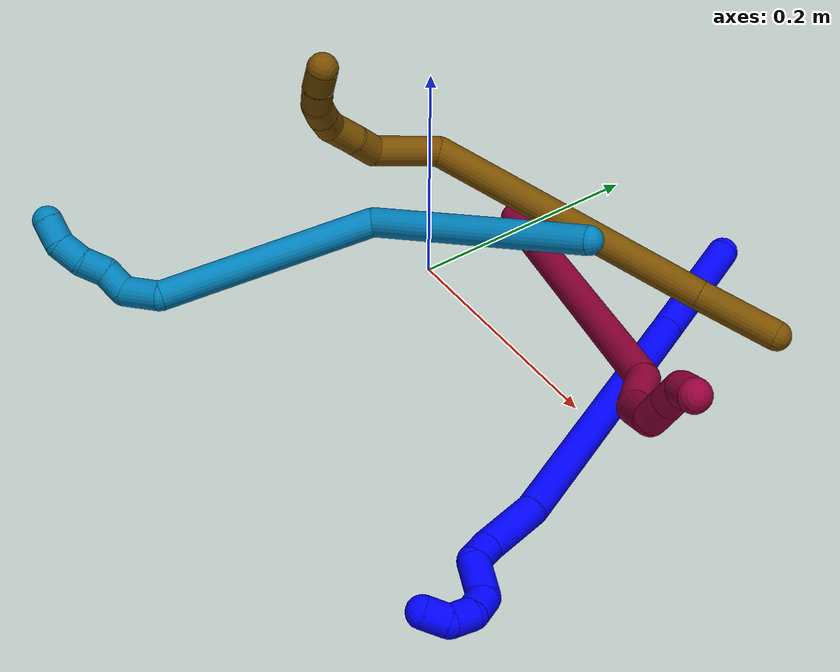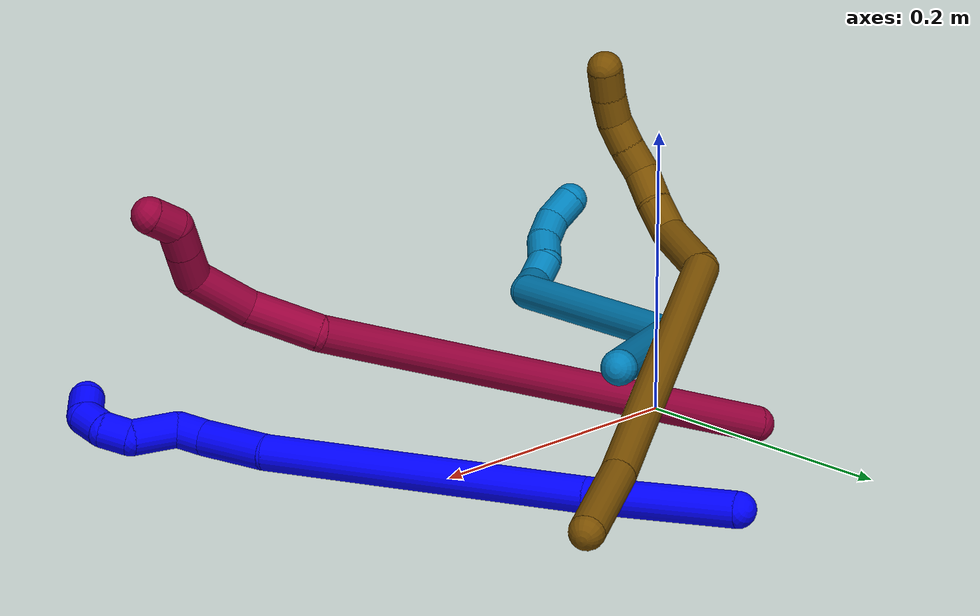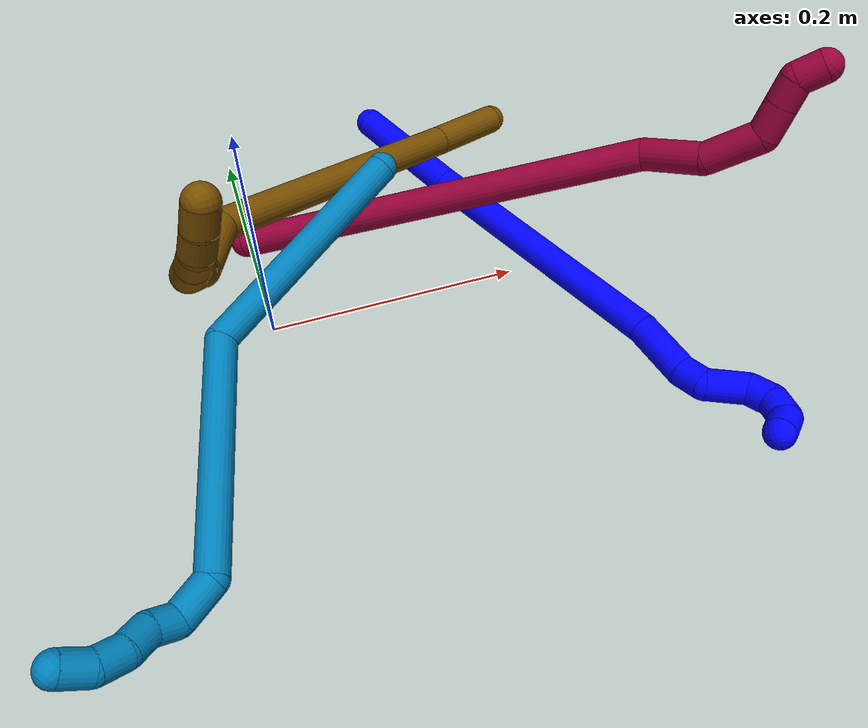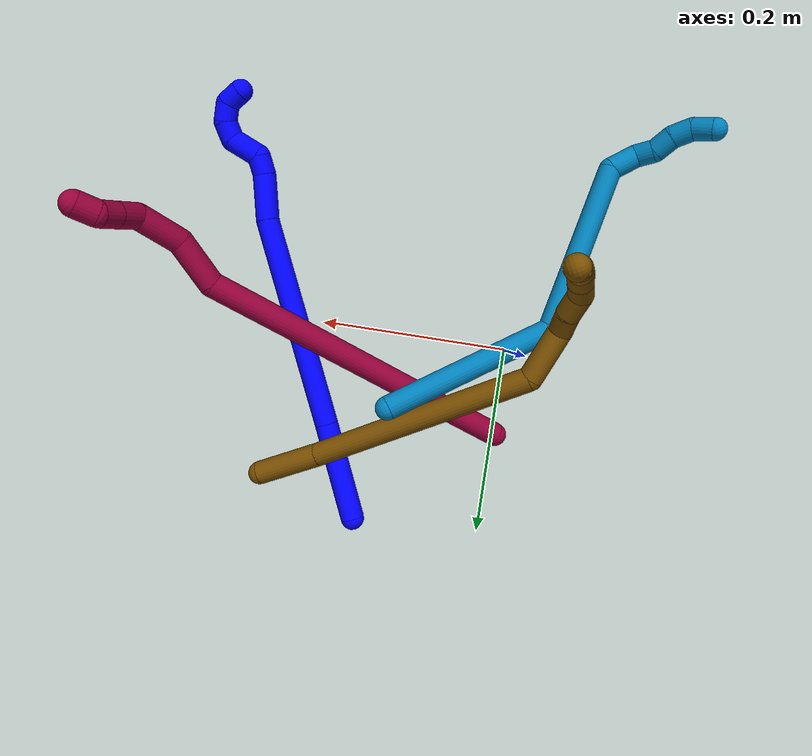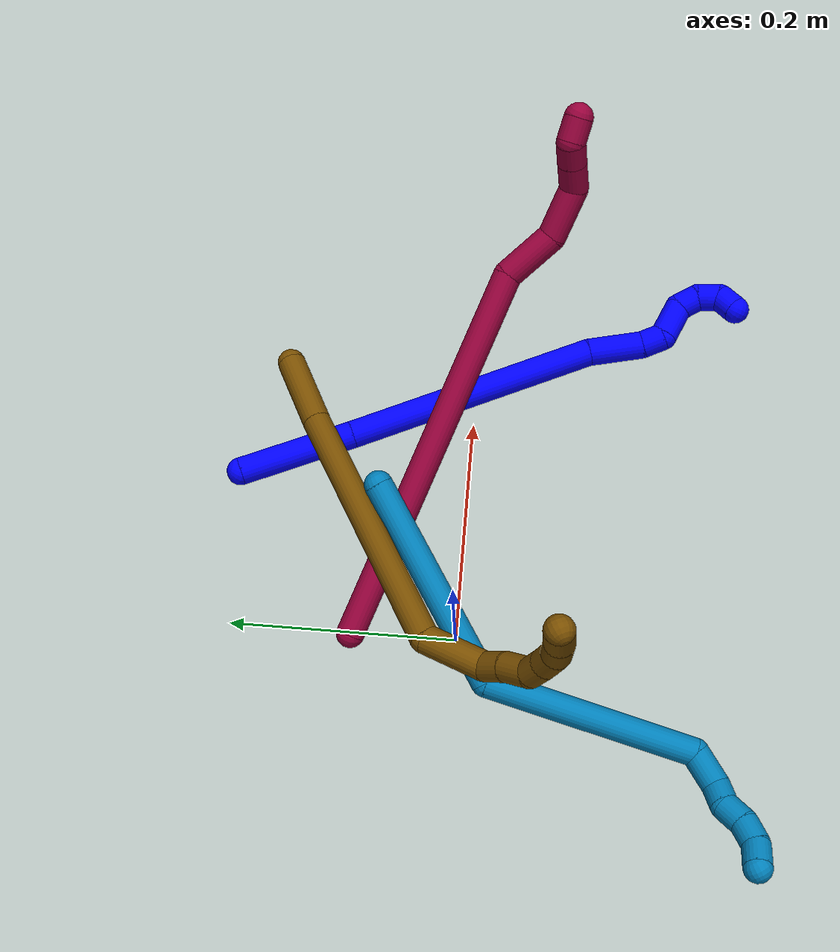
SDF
<sdf version="1.7">
 <world name="default">
  <model name="1">
   <static>0</static>
   <link name="1">
    <collision name="collision-cylinder-e_1_1_4">
     <pose>0.00842 -0.032595 0.040472 0.678008 0.160638 0.05675</pose>
     <geometry><cylinder><radius>0.0125</radius><length>0.105286</length></cylinder></geometry>
     <surface>
      <friction><ode><mu>1.16</mu><mu2>1.16</mu2><slip1>0</slip1><slip2>0</slip2></ode></friction>
      <contact><ode><kp>1e+06</kp><kd>1</kd><max_vel>0</max_vel><min_depth>0.001</min_depth></ode></contact>
     </surface>
    </collision>
    <visual name="visual-cylinder-e_1_1_4">
     <pose>0.00842 -0.032595 0.040472 0.678008 0.160638 0.05675</pose>
     <geometry><cylinder><radius>0.0125</radius><length>0.105286</length></cylinder></geometry>
     <material><ambient>0 0 1 1</ambient></material>
    </visual>
    <collision name="collision-cylinder-e_2_4_5">
     <pose>0.038405 -0.138295 0.167012 0.704136 0.188689 0.069498</pose>
     <geometry><cylinder><radius>0.0125</radius><length>0.229933</length></cylinder></geometry>
     <surface>
      <friction><ode><mu>1.16</mu><mu2>1.16</mu2><slip1>0</slip1><slip2>0</slip2></ode></friction>
      <contact><ode><kp>1e+06</kp><kd>1</kd><max_vel>0</max_vel><min_depth>0.001</min_depth></ode></contact>
     </surface>
    </collision>
    <visual name="visual-cylinder-e_2_4_5">
     <pose>0.038405 -0.138295 0.167012 0.704136 0.188689 0.069498</pose>
     <geometry><cylinder><radius>0.0125</radius><length>0.229933</length></cylinder></geometry>
     <material><ambient>0 0 1 1</ambient></material>
    </visual>
    <collision name="collision-cylinder-e_3_5_6">
     <pose>0.067471 -0.223268 0.273699 0.522296 0.305482 0.082235</pose>
     <geometry><cylinder><radius>0.0125</radius><length>0.049887</length></cylinder></geometry>
     <surface>
      <friction><ode><mu>1.16</mu><mu2>1.16</mu2><slip1>0</slip1><slip2>0</slip2></ode></friction>
      <contact><ode><kp>1e+06</kp><kd>1</kd><max_vel>0</max_vel><min_depth>0.001</min_depth></ode></contact>
     </surface>
    </collision>
    <visual name="visual-cylinder-e_3_5_6">
     <pose>0.067471 -0.223268 0.273699 0.522296 0.305482 0.082235</pose>
     <geometry><cylinder><radius>0.0125</radius><length>0.049887</length></cylinder></geometry>
     <material><ambient>0 0 1 1</ambient></material>
    </visual>
    <collision name="collision-cylinder-e_4_6_7">
     <pose>0.078415 -0.242066 0.301264 0.784094 0.337351 0.140584</pose>
     <geometry><cylinder><radius>0.0125</radius><length>0.0208</length></cylinder></geometry>
     <surface>
      <friction><ode><mu>1.16</mu><mu2>1.16</mu2><slip1>0</slip1><slip2>0</slip2></ode></friction>
      <contact><ode><kp>1e+06</kp><kd>1</kd><max_vel>0</max_vel><min_depth>0.001</min_depth></ode></contact>
     </surface>
    </collision>
    <visual name="visual-cylinder-e_4_6_7">
     <pose>0.078415 -0.242066 0.301264 0.784094 0.337351 0.140584</pose>
     <geometry><cylinder><radius>0.0125</radius><length>0.0208</length></cylinder></geometry>
     <material><ambient>0 0 1 1</ambient></material>
    </visual>
    <collision name="collision-cylinder-e_5_7_8">
     <pose>0.077604 -0.264694 0.31262 1.29707 -0.255186 -0.193851</pose>
     <geometry><cylinder><radius>0.0125</radius><length>0.0337</length></cylinder></geometry>
     <surface>
      <friction><ode><mu>1.16</mu><mu2>1.16</mu2><slip1>0</slip1><slip2>0</slip2></ode></friction>
      <contact><ode><kp>1e+06</kp><kd>1</kd><max_vel>0</max_vel><min_depth>0.001</min_depth></ode></contact>
     </surface>
    </collision>
    <visual name="visual-cylinder-e_5_7_8">
     <pose>0.077604 -0.264694 0.31262 1.29707 -0.255186 -0.193851</pose>
     <geometry><cylinder><radius>0.0125</radius><length>0.0337</length></cylinder></geometry>
     <material><ambient>0 0 1 1</ambient></material>
    </visual>
    <collision name="collision-cylinder-e_6_8_9">
     <pose>0.076498 -0.287865 0.323156 0.884018 0.314789 0.149931</pose>
     <geometry><cylinder><radius>0.0125</radius><length>0.02033</length></cylinder></geometry>
     <surface>
      <friction><ode><mu>1.16</mu><mu2>1.16</mu2><slip1>0</slip1><slip2>0</slip2></ode></friction>
      <contact><ode><kp>1e+06</kp><kd>1</kd><max_vel>0</max_vel><min_depth>0.001</min_depth></ode></contact>
     </surface>
    </collision>
    <visual name="visual-cylinder-e_6_8_9">
     <pose>0.076498 -0.287865 0.323156 0.884018 0.314789 0.149931</pose>
     <geometry><cylinder><radius>0.0125</radius><length>0.02033</length></cylinder></geometry>
     <material><ambient>0 0 1 1</ambient></material>
    </visual>
    <collision name="collision-cylinder-e_7_9_10">
     <pose>0.085223 -0.29841 0.337032 0.377341 0.589817 0.115873</pose>
     <geometry><cylinder><radius>0.0125</radius><length>0.020057</length></cylinder></geometry>
     <surface>
      <friction><ode><mu>1.16</mu><mu2>1.16</mu2><slip1>0</slip1><slip2>0</slip2></ode></friction>
      <contact><ode><kp>1e+06</kp><kd>1</kd><max_vel>0</max_vel><min_depth>0.001</min_depth></ode></contact>
     </surface>
    </collision>
    <visual name="visual-cylinder-e_7_9_10">
     <pose>0.085223 -0.29841 0.337032 0.377341 0.589817 0.115873</pose>
     <geometry><cylinder><radius>0.0125</radius><length>0.020057</length></cylinder></geometry>
     <material><ambient>0 0 1 1</ambient></material>
    </visual>
    <collision name="collision-cylinder-e_8_10_2">
     <pose>0.098576 -0.298027 0.350043 -0.580836 0.890154 -0.283211</pose>
     <geometry><cylinder><radius>0.0125</radius><length>0.020007</length></cylinder></geometry>
     <surface>
      <friction><ode><mu>1.16</mu><mu2>1.16</mu2><slip1>0</slip1><slip2>0</slip2></ode></friction>
      <contact><ode><kp>1e+06</kp><kd>1</kd><max_vel>0</max_vel><min_depth>0.001</min_depth></ode></contact>
     </surface>
    </collision>
    <visual name="visual-cylinder-e_8_10_2">
     <pose>0.098576 -0.298027 0.350043 -0.580836 0.890154 -0.283211</pose>
     <geometry><cylinder><radius>0.0125</radius><length>0.020007</length></cylinder></geometry>
     <material><ambient>0 0 1 1</ambient></material>
    </visual>
    <collision name="collision-sphere-2">
     <pose>0.10635 -0.294572 0.355305 0 -0 0</pose>
     <geometry><sphere><radius>0.0125</radius></sphere></geometry>
     <surface>
      <friction><ode><mu>1.16</mu><mu2>1.16</mu2><slip1>0</slip1><slip2>0</slip2></ode></friction>
      <contact><ode><kp>1e+06</kp><kd>1</kd><max_vel>0</max_vel><min_depth>0.001</min_depth></ode></contact>
     </surface>
    </collision>
    <visual name="visual-sphere-2">
     <pose>0.10635 -0.294572 0.355305 0 -0 0</pose>
     <geometry><sphere><radius>0.0125</radius></sphere></geometry>
     <material><ambient>0 0 1 1</ambient></material>
    </visual>
    <collision name="collision-sphere-10">
     <pose>0.090801 -0.301481 0.34478 0 -0 0</pose>
     <geometry><sphere><radius>0.0125</radius></sphere></geometry>
     <surface>
      <friction><ode><mu>1.16</mu><mu2>1.16</mu2><slip1>0</slip1><slip2>0</slip2></ode></friction>
      <contact><ode><kp>1e+06</kp><kd>1</kd><max_vel>0</max_vel><min_depth>0.001</min_depth></ode></contact>
     </surface>
    </collision>
    <visual name="visual-sphere-10">
     <pose>0.090801 -0.301481 0.34478 0 -0 0</pose>
     <geometry><sphere><radius>0.0125</radius></sphere></geometry>
     <material><ambient>0 0 1 1</ambient></material>
    </visual>
    <collision name="collision-sphere-9">
     <pose>0.079645 -0.29534 0.329285 0 -0 0</pose>
     <geometry><sphere><radius>0.0125</radius></sphere></geometry>
     <surface>
      <friction><ode><mu>1.16</mu><mu2>1.16</mu2><slip1>0</slip1><slip2>0</slip2></ode></friction>
      <contact><ode><kp>1e+06</kp><kd>1</kd><max_vel>0</max_vel><min_depth>0.001</min_depth></ode></contact>
     </surface>
    </collision>
    <visual name="visual-sphere-9">
     <pose>0.079645 -0.29534 0.329285 0 -0 0</pose>
     <geometry><sphere><radius>0.0125</radius></sphere></geometry>
     <material><ambient>0 0 1 1</ambient></material>
    </visual>
    <collision name="collision-sphere-4">
     <pose>0.01684 -0.06519 0.080943 0 -0 0</pose>
     <geometry><sphere><radius>0.0125</radius></sphere></geometry>
     <surface>
      <friction><ode><mu>1.16</mu><mu2>1.16</mu2><slip1>0</slip1><slip2>0</slip2></ode></friction>
      <contact><ode><kp>1e+06</kp><kd>1</kd><max_vel>0</max_vel><min_depth>0.001</min_depth></ode></contact>
     </surface>
    </collision>
    <visual name="visual-sphere-4">
     <pose>0.01684 -0.06519 0.080943 0 -0 0</pose>
     <geometry><sphere><radius>0.0125</radius></sphere></geometry>
     <material><ambient>0 0 1 1</ambient></material>
    </visual>
    <collision name="collision-sphere-1">
     <geometry><sphere><radius>0.0125</radius></sphere></geometry>
     <surface>
      <friction><ode><mu>1.16</mu><mu2>1.16</mu2><slip1>0</slip1><slip2>0</slip2></ode></friction>
      <contact><ode><kp>1e+06</kp><kd>1</kd><max_vel>0</max_vel><min_depth>0.001</min_depth></ode></contact>
     </surface>
    </collision>
    <visual name="visual-sphere-1">
     <geometry><sphere><radius>0.0125</radius></sphere></geometry>
     <material><ambient>0 0 1 1</ambient></material>
    </visual>
    <collision name="collision-sphere-8">
     <pose>0.073351 -0.280391 0.317028 0 -0 0</pose>
     <geometry><sphere><radius>0.0125</radius></sphere></geometry>
     <surface>
      <friction><ode><mu>1.16</mu><mu2>1.16</mu2><slip1>0</slip1><slip2>0</slip2></ode></friction>
      <contact><ode><kp>1e+06</kp><kd>1</kd><max_vel>0</max_vel><min_depth>0.001</min_depth></ode></contact>
     </surface>
    </collision>
    <visual name="visual-sphere-8">
     <pose>0.073351 -0.280391 0.317028 0 -0 0</pose>
     <geometry><sphere><radius>0.0125</radius></sphere></geometry>
     <material><ambient>0 0 1 1</ambient></material>
    </visual>
    <collision name="collision-sphere-5">
     <pose>0.059969 -0.211401 0.253081 0 -0 0</pose>
     <geometry><sphere><radius>0.0125</radius></sphere></geometry>
     <surface>
      <friction><ode><mu>1.16</mu><mu2>1.16</mu2><slip1>0</slip1><slip2>0</slip2></ode></friction>
      <contact><ode><kp>1e+06</kp><kd>1</kd><max_vel>0</max_vel><min_depth>0.001</min_depth></ode></contact>
     </surface>
    </collision>
    <visual name="visual-sphere-5">
     <pose>0.059969 -0.211401 0.253081 0 -0 0</pose>
     <geometry><sphere><radius>0.0125</radius></sphere></geometry>
     <material><ambient>0 0 1 1</ambient></material>
    </visual>
    <collision name="collision-sphere-6">
     <pose>0.074973 -0.235136 0.294316 0 -0 0</pose>
     <geometry><sphere><radius>0.0125</radius></sphere></geometry>
     <surface>
      <friction><ode><mu>1.16</mu><mu2>1.16</mu2><slip1>0</slip1><slip2>0</slip2></ode></friction>
      <contact><ode><kp>1e+06</kp><kd>1</kd><max_vel>0</max_vel><min_depth>0.001</min_depth></ode></contact>
     </surface>
    </collision>
    <visual name="visual-sphere-6">
     <pose>0.074973 -0.235136 0.294316 0 -0 0</pose>
     <geometry><sphere><radius>0.0125</radius></sphere></geometry>
     <material><ambient>0 0 1 1</ambient></material>
    </visual>
    <collision name="collision-sphere-7">
     <pose>0.081858 -0.248997 0.308213 0 -0 0</pose>
     <geometry><sphere><radius>0.0125</radius></sphere></geometry>
     <surface>
      <friction><ode><mu>1.16</mu><mu2>1.16</mu2><slip1>0</slip1><slip2>0</slip2></ode></friction>
      <contact><ode><kp>1e+06</kp><kd>1</kd><max_vel>0</max_vel><min_depth>0.001</min_depth></ode></contact>
     </surface>
    </collision>
    <visual name="visual-sphere-7">
     <pose>0.081858 -0.248997 0.308213 0 -0 0</pose>
     <geometry><sphere><radius>0.0125</radius></sphere></geometry>
     <material><ambient>0 0 1 1</ambient></material>
    </visual>
    <inertial>
     <pose>0.045132 -0.156248 0.186903 0 -0 0</pose>
     <mass>0.5</mass>
     <inertia>
      <ixx>0.001206</ixx>
      <ixy>0</ixy>
      <ixz>0</ixz>
      <iyy>0.000935</iyy>
      <iyz>0</iyz>
      <izz>0.000539</izz>
     </inertia>
    </inertial>
   </link>
   <pose>0.135492 0.204401 0.015534 -2.56899 -0.98763 -2.35992</pose>
  </model>
  <model name="8">
   <static>0</static>
   <link name="8">
    <collision name="collision-cylinder-e_1_1_4">
     <pose>0.074338 -0.017445 0.151364 0.114743 0.453915 0.026526</pose>
     <geometry><cylinder><radius>0.0125</radius><length>0.339066</length></cylinder></geometry>
     <surface>
      <friction><ode><mu>1.16</mu><mu2>1.16</mu2><slip1>0</slip1><slip2>0</slip2></ode></friction>
      <contact><ode><kp>1e+06</kp><kd>1</kd><max_vel>0</max_vel><min_depth>0.001</min_depth></ode></contact>
     </surface>
    </collision>
    <visual name="visual-cylinder-e_1_1_4">
     <pose>0.074338 -0.017445 0.151364 0.114743 0.453915 0.026526</pose>
     <geometry><cylinder><radius>0.0125</radius><length>0.339066</length></cylinder></geometry>
     <material><ambient>0.584314 0 0.227451 1</ambient></material>
    </visual>
    <collision name="collision-cylinder-e_2_4_5">
     <pose>0.154272 -0.047307 0.323325 0.542533 0.228588 0.063832</pose>
     <geometry><cylinder><radius>0.0125</radius><length>0.049388</length></cylinder></geometry>
     <surface>
      <friction><ode><mu>1.16</mu><mu2>1.16</mu2><slip1>0</slip1><slip2>0</slip2></ode></friction>
      <contact><ode><kp>1e+06</kp><kd>1</kd><max_vel>0</max_vel><min_depth>0.001</min_depth></ode></contact>
     </surface>
    </collision>
    <visual name="visual-cylinder-e_2_4_5">
     <pose>0.154272 -0.047307 0.323325 0.542533 0.228588 0.063832</pose>
     <geometry><cylinder><radius>0.0125</radius><length>0.049388</length></cylinder></geometry>
     <material><ambient>0.584314 0 0.227451 1</ambient></material>
    </visual>
    <collision name="collision-cylinder-e_3_5_6">
     <pose>0.16407 -0.06146 0.366074 0.078151 0.186928 0.007329</pose>
     <geometry><cylinder><radius>0.0125</radius><length>0.045225</length></cylinder></geometry>
     <surface>
      <friction><ode><mu>1.16</mu><mu2>1.16</mu2><slip1>0</slip1><slip2>0</slip2></ode></friction>
      <contact><ode><kp>1e+06</kp><kd>1</kd><max_vel>0</max_vel><min_depth>0.001</min_depth></ode></contact>
     </surface>
    </collision>
    <visual name="visual-cylinder-e_3_5_6">
     <pose>0.16407 -0.06146 0.366074 0.078151 0.186928 0.007329</pose>
     <geometry><cylinder><radius>0.0125</radius><length>0.045225</length></cylinder></geometry>
     <material><ambient>0.584314 0 0.227451 1</ambient></material>
    </visual>
    <collision name="collision-cylinder-e_4_6_7">
     <pose>0.165016 -0.0579 0.399357 -0.443932 -0.258225 0.058587</pose>
     <geometry><cylinder><radius>0.0125</radius><length>0.0255</length></cylinder></geometry>
     <surface>
      <friction><ode><mu>1.16</mu><mu2>1.16</mu2><slip1>0</slip1><slip2>0</slip2></ode></friction>
      <contact><ode><kp>1e+06</kp><kd>1</kd><max_vel>0</max_vel><min_depth>0.001</min_depth></ode></contact>
     </surface>
    </collision>
    <visual name="visual-cylinder-e_4_6_7">
     <pose>0.165016 -0.0579 0.399357 -0.443932 -0.258225 0.058587</pose>
     <geometry><cylinder><radius>0.0125</radius><length>0.0255</length></cylinder></geometry>
     <material><ambient>0.584314 0 0.227451 1</ambient></material>
    </visual>
    <collision name="collision-cylinder-e_5_7_8">
     <pose>0.159074 -0.048516 0.419268 -0.435971 -0.270554 0.060279</pose>
     <geometry><cylinder><radius>0.0125</radius><length>0.020101</length></cylinder></geometry>
     <surface>
      <friction><ode><mu>1.16</mu><mu2>1.16</mu2><slip1>0</slip1><slip2>0</slip2></ode></friction>
      <contact><ode><kp>1e+06</kp><kd>1</kd><max_vel>0</max_vel><min_depth>0.001</min_depth></ode></contact>
     </surface>
    </collision>
    <visual name="visual-cylinder-e_5_7_8">
     <pose>0.159074 -0.048516 0.419268 -0.435971 -0.270554 0.060279</pose>
     <geometry><cylinder><radius>0.0125</radius><length>0.020101</length></cylinder></geometry>
     <material><ambient>0.584314 0 0.227451 1</ambient></material>
    </visual>
    <collision name="collision-cylinder-e_6_8_2">
     <pose>0.159431 -0.044067 0.437944 -0.036267 0.298117 -0.005447</pose>
     <geometry><cylinder><radius>0.0125</radius><length>0.020721</length></cylinder></geometry>
     <surface>
      <friction><ode><mu>1.16</mu><mu2>1.16</mu2><slip1>0</slip1><slip2>0</slip2></ode></friction>
      <contact><ode><kp>1e+06</kp><kd>1</kd><max_vel>0</max_vel><min_depth>0.001</min_depth></ode></contact>
     </surface>
    </collision>
    <visual name="visual-cylinder-e_6_8_2">
     <pose>0.159431 -0.044067 0.437944 -0.036267 0.298117 -0.005447</pose>
     <geometry><cylinder><radius>0.0125</radius><length>0.020721</length></cylinder></geometry>
     <material><ambient>0.584314 0 0.227451 1</ambient></material>
    </visual>
    <collision name="collision-sphere-2">
     <pose>0.162474 -0.043708 0.447841 0 -0 0</pose>
     <geometry><sphere><radius>0.0125</radius></sphere></geometry>
     <surface>
      <friction><ode><mu>1.16</mu><mu2>1.16</mu2><slip1>0</slip1><slip2>0</slip2></ode></friction>
      <contact><ode><kp>1e+06</kp><kd>1</kd><max_vel>0</max_vel><min_depth>0.001</min_depth></ode></contact>
     </surface>
    </collision>
    <visual name="visual-sphere-2">
     <pose>0.162474 -0.043708 0.447841 0 -0 0</pose>
     <geometry><sphere><radius>0.0125</radius></sphere></geometry>
     <material><ambient>0.584314 0 0.227451 1</ambient></material>
    </visual>
    <collision name="collision-sphere-4">
     <pose>0.148676 -0.034889 0.302727 0 -0 0</pose>
     <geometry><sphere><radius>0.0125</radius></sphere></geometry>
     <surface>
      <friction><ode><mu>1.16</mu><mu2>1.16</mu2><slip1>0</slip1><slip2>0</slip2></ode></friction>
      <contact><ode><kp>1e+06</kp><kd>1</kd><max_vel>0</max_vel><min_depth>0.001</min_depth></ode></contact>
     </surface>
    </collision>
    <visual name="visual-sphere-4">
     <pose>0.148676 -0.034889 0.302727 0 -0 0</pose>
     <geometry><sphere><radius>0.0125</radius></sphere></geometry>
     <material><ambient>0.584314 0 0.227451 1</ambient></material>
    </visual>
    <collision name="collision-sphere-1">
     <geometry><sphere><radius>0.0125</radius></sphere></geometry>
     <surface>
      <friction><ode><mu>1.16</mu><mu2>1.16</mu2><slip1>0</slip1><slip2>0</slip2></ode></friction>
      <contact><ode><kp>1e+06</kp><kd>1</kd><max_vel>0</max_vel><min_depth>0.001</min_depth></ode></contact>
     </surface>
    </collision>
    <visual name="visual-sphere-1">
     <geometry><sphere><radius>0.0125</radius></sphere></geometry>
     <material><ambient>0.584314 0 0.227451 1</ambient></material>
    </visual>
    <collision name="collision-sphere-8">
     <pose>0.156388 -0.044426 0.428047 0 -0 0</pose>
     <geometry><sphere><radius>0.0125</radius></sphere></geometry>
     <surface>
      <friction><ode><mu>1.16</mu><mu2>1.16</mu2><slip1>0</slip1><slip2>0</slip2></ode></friction>
      <contact><ode><kp>1e+06</kp><kd>1</kd><max_vel>0</max_vel><min_depth>0.001</min_depth></ode></contact>
     </surface>
    </collision>
    <visual name="visual-sphere-8">
     <pose>0.156388 -0.044426 0.428047 0 -0 0</pose>
     <geometry><sphere><radius>0.0125</radius></sphere></geometry>
     <material><ambient>0.584314 0 0.227451 1</ambient></material>
    </visual>
    <collision name="collision-sphere-5">
     <pose>0.159867 -0.059725 0.343923 0 -0 0</pose>
     <geometry><sphere><radius>0.0125</radius></sphere></geometry>
     <surface>
      <friction><ode><mu>1.16</mu><mu2>1.16</mu2><slip1>0</slip1><slip2>0</slip2></ode></friction>
      <contact><ode><kp>1e+06</kp><kd>1</kd><max_vel>0</max_vel><min_depth>0.001</min_depth></ode></contact>
     </surface>
    </collision>
    <visual name="visual-sphere-5">
     <pose>0.159867 -0.059725 0.343923 0 -0 0</pose>
     <geometry><sphere><radius>0.0125</radius></sphere></geometry>
     <material><ambient>0.584314 0 0.227451 1</ambient></material>
    </visual>
    <collision name="collision-sphere-6">
     <pose>0.168272 -0.063194 0.388225 0 -0 0</pose>
     <geometry><sphere><radius>0.0125</radius></sphere></geometry>
     <surface>
      <friction><ode><mu>1.16</mu><mu2>1.16</mu2><slip1>0</slip1><slip2>0</slip2></ode></friction>
      <contact><ode><kp>1e+06</kp><kd>1</kd><max_vel>0</max_vel><min_depth>0.001</min_depth></ode></contact>
     </surface>
    </collision>
    <visual name="visual-sphere-6">
     <pose>0.168272 -0.063194 0.388225 0 -0 0</pose>
     <geometry><sphere><radius>0.0125</radius></sphere></geometry>
     <material><ambient>0.584314 0 0.227451 1</ambient></material>
    </visual>
    <collision name="collision-sphere-7">
     <pose>0.16176 -0.052606 0.410489 0 -0 0</pose>
     <geometry><sphere><radius>0.0125</radius></sphere></geometry>
     <surface>
      <friction><ode><mu>1.16</mu><mu2>1.16</mu2><slip1>0</slip1><slip2>0</slip2></ode></friction>
      <contact><ode><kp>1e+06</kp><kd>1</kd><max_vel>0</max_vel><min_depth>0.001</min_depth></ode></contact>
     </surface>
    </collision>
    <visual name="visual-sphere-7">
     <pose>0.16176 -0.052606 0.410489 0 -0 0</pose>
     <geometry><sphere><radius>0.0125</radius></sphere></geometry>
     <material><ambient>0.584314 0 0.227451 1</ambient></material>
    </visual>
    <inertial>
     <pose>0.101907 -0.028791 0.223064 0 -0 0</pose>
     <mass>0.5</mass>
     <inertia>
      <ixx>0.003048</ixx>
      <ixy>0</ixy>
      <ixz>0</ixz>
      <iyy>0.003344</iyy>
      <iyz>0</iyz>
      <izz>-0.001058</izz>
     </inertia>
    </inertial>
   </link>
   <pose>-0.003083 0.091939 0.01149 0.318059 0.722325 0.048547</pose>
  </model>
  <model name="9">
   <static>0</static>
   <link name="9">
    <collision name="collision-cylinder-e_1_1_4">
     <pose>-5.7e-05 -0.005621 0.095264 0.058941 -0.000593 -1.7e-05</pose>
     <geometry><cylinder><radius>0.0125</radius><length>0.19086</length></cylinder></geometry>
     <surface>
      <friction><ode><mu>1.16</mu><mu2>1.16</mu2><slip1>0</slip1><slip2>0</slip2></ode></friction>
      <contact><ode><kp>1e+06</kp><kd>1</kd><max_vel>0</max_vel><min_depth>0.001</min_depth></ode></contact>
     </surface>
    </collision>
    <visual name="visual-cylinder-e_1_1_4">
     <pose>-5.7e-05 -0.005621 0.095264 0.058941 -0.000593 -1.7e-05</pose>
     <geometry><cylinder><radius>0.0125</radius><length>0.19086</length></cylinder></geometry>
     <material><ambient>0 0.490196 0.709804 1</ambient></material>
    </visual>
    <collision name="collision-cylinder-e_2_4_5">
     <pose>-0.061748 -0.033069 0.257906 0.313269 -0.716132 -0.118055</pose>
     <geometry><cylinder><radius>0.0125</radius><length>0.187776</length></cylinder></geometry>
     <surface>
      <friction><ode><mu>1.16</mu><mu2>1.16</mu2><slip1>0</slip1><slip2>0</slip2></ode></friction>
      <contact><ode><kp>1e+06</kp><kd>1</kd><max_vel>0</max_vel><min_depth>0.001</min_depth></ode></contact>
     </surface>
    </collision>
    <visual name="visual-cylinder-e_2_4_5">
     <pose>-0.061748 -0.033069 0.257906 0.313269 -0.716132 -0.118055</pose>
     <geometry><cylinder><radius>0.0125</radius><length>0.187776</length></cylinder></geometry>
     <material><ambient>0 0.490196 0.709804 1</ambient></material>
    </visual>
    <collision name="collision-cylinder-e_3_5_6">
     <pose>-0.123884 -0.057405 0.341334 0.155139 -0.030867 -0.002399</pose>
     <geometry><cylinder><radius>0.0125</radius><length>0.032505</length></cylinder></geometry>
     <surface>
      <friction><ode><mu>1.16</mu><mu2>1.16</mu2><slip1>0</slip1><slip2>0</slip2></ode></friction>
      <contact><ode><kp>1e+06</kp><kd>1</kd><max_vel>0</max_vel><min_depth>0.001</min_depth></ode></contact>
     </surface>
    </collision>
    <visual name="visual-cylinder-e_3_5_6">
     <pose>-0.123884 -0.057405 0.341334 0.155139 -0.030867 -0.002399</pose>
     <geometry><cylinder><radius>0.0125</radius><length>0.032505</length></cylinder></geometry>
     <material><ambient>0 0.490196 0.709804 1</ambient></material>
    </visual>
    <collision name="collision-cylinder-e_4_6_7">
     <pose>-0.120499 -0.066988 0.364592 0.775915 0.367404 0.151568</pose>
     <geometry><cylinder><radius>0.0125</radius><length>0.021642</length></cylinder></geometry>
     <surface>
      <friction><ode><mu>1.16</mu><mu2>1.16</mu2><slip1>0</slip1><slip2>0</slip2></ode></friction>
      <contact><ode><kp>1e+06</kp><kd>1</kd><max_vel>0</max_vel><min_depth>0.001</min_depth></ode></contact>
     </surface>
    </collision>
    <visual name="visual-cylinder-e_4_6_7">
     <pose>-0.120499 -0.066988 0.364592 0.775915 0.367404 0.151568</pose>
     <geometry><cylinder><radius>0.0125</radius><length>0.021642</length></cylinder></geometry>
     <material><ambient>0 0.490196 0.709804 1</ambient></material>
    </visual>
    <collision name="collision-cylinder-e_5_7_8">
     <pose>-0.117496 -0.081501 0.379969 0.738728 -0.079841 -0.030923</pose>
     <geometry><cylinder><radius>0.0125</radius><length>0.02217</length></cylinder></geometry>
     <surface>
      <friction><ode><mu>1.16</mu><mu2>1.16</mu2><slip1>0</slip1><slip2>0</slip2></ode></friction>
      <contact><ode><kp>1e+06</kp><kd>1</kd><max_vel>0</max_vel><min_depth>0.001</min_depth></ode></contact>
     </surface>
    </collision>
    <visual name="visual-cylinder-e_5_7_8">
     <pose>-0.117496 -0.081501 0.379969 0.738728 -0.079841 -0.030923</pose>
     <geometry><cylinder><radius>0.0125</radius><length>0.02217</length></cylinder></geometry>
     <material><ambient>0 0.490196 0.709804 1</ambient></material>
    </visual>
    <collision name="collision-cylinder-e_6_8_9">
     <pose>-0.115682 -0.095899 0.396452 0.696851 0.243965 0.089003</pose>
     <geometry><cylinder><radius>0.0125</radius><length>0.022344</length></cylinder></geometry>
     <surface>
      <friction><ode><mu>1.16</mu><mu2>1.16</mu2><slip1>0</slip1><slip2>0</slip2></ode></friction>
      <contact><ode><kp>1e+06</kp><kd>1</kd><max_vel>0</max_vel><min_depth>0.001</min_depth></ode></contact>
     </surface>
    </collision>
    <visual name="visual-cylinder-e_6_8_9">
     <pose>-0.115682 -0.095899 0.396452 0.696851 0.243965 0.089003</pose>
     <geometry><cylinder><radius>0.0125</radius><length>0.022344</length></cylinder></geometry>
     <material><ambient>0 0.490196 0.709804 1</ambient></material>
    </visual>
    <collision name="collision-cylinder-e_7_9_2">
     <pose>-0.105995 -0.109358 0.410911 0.813554 0.663128 0.294483</pose>
     <geometry><cylinder><radius>0.0125</radius><length>0.022703</length></cylinder></geometry>
     <surface>
      <friction><ode><mu>1.16</mu><mu2>1.16</mu2><slip1>0</slip1><slip2>0</slip2></ode></friction>
      <contact><ode><kp>1e+06</kp><kd>1</kd><max_vel>0</max_vel><min_depth>0.001</min_depth></ode></contact>
     </surface>
    </collision>
    <visual name="visual-cylinder-e_7_9_2">
     <pose>-0.105995 -0.109358 0.410911 0.813554 0.663128 0.294483</pose>
     <geometry><cylinder><radius>0.0125</radius><length>0.022703</length></cylinder></geometry>
     <material><ambient>0 0.490196 0.709804 1</ambient></material>
    </visual>
    <collision name="collision-sphere-2">
     <pose>-0.099008 -0.115859 0.417056 0 -0 0</pose>
     <geometry><sphere><radius>0.0125</radius></sphere></geometry>
     <surface>
      <friction><ode><mu>1.16</mu><mu2>1.16</mu2><slip1>0</slip1><slip2>0</slip2></ode></friction>
      <contact><ode><kp>1e+06</kp><kd>1</kd><max_vel>0</max_vel><min_depth>0.001</min_depth></ode></contact>
     </surface>
    </collision>
    <visual name="visual-sphere-2">
     <pose>-0.099008 -0.115859 0.417056 0 -0 0</pose>
     <geometry><sphere><radius>0.0125</radius></sphere></geometry>
     <material><ambient>0 0.490196 0.709804 1</ambient></material>
    </visual>
    <collision name="collision-sphere-9">
     <pose>-0.112983 -0.102857 0.404766 0 -0 0</pose>
     <geometry><sphere><radius>0.0125</radius></sphere></geometry>
     <surface>
      <friction><ode><mu>1.16</mu><mu2>1.16</mu2><slip1>0</slip1><slip2>0</slip2></ode></friction>
      <contact><ode><kp>1e+06</kp><kd>1</kd><max_vel>0</max_vel><min_depth>0.001</min_depth></ode></contact>
     </surface>
    </collision>
    <visual name="visual-sphere-9">
     <pose>-0.112983 -0.102857 0.404766 0 -0 0</pose>
     <geometry><sphere><radius>0.0125</radius></sphere></geometry>
     <material><ambient>0 0.490196 0.709804 1</ambient></material>
    </visual>
    <collision name="collision-sphere-4">
     <pose>-0.000113 -0.011243 0.190529 0 -0 0</pose>
     <geometry><sphere><radius>0.0125</radius></sphere></geometry>
     <surface>
      <friction><ode><mu>1.16</mu><mu2>1.16</mu2><slip1>0</slip1><slip2>0</slip2></ode></friction>
      <contact><ode><kp>1e+06</kp><kd>1</kd><max_vel>0</max_vel><min_depth>0.001</min_depth></ode></contact>
     </surface>
    </collision>
    <visual name="visual-sphere-4">
     <pose>-0.000113 -0.011243 0.190529 0 -0 0</pose>
     <geometry><sphere><radius>0.0125</radius></sphere></geometry>
     <material><ambient>0 0.490196 0.709804 1</ambient></material>
    </visual>
    <collision name="collision-sphere-1">
     <geometry><sphere><radius>0.0125</radius></sphere></geometry>
     <surface>
      <friction><ode><mu>1.16</mu><mu2>1.16</mu2><slip1>0</slip1><slip2>0</slip2></ode></friction>
      <contact><ode><kp>1e+06</kp><kd>1</kd><max_vel>0</max_vel><min_depth>0.001</min_depth></ode></contact>
     </surface>
    </collision>
    <visual name="visual-sphere-1">
     <geometry><sphere><radius>0.0125</radius></sphere></geometry>
     <material><ambient>0 0.490196 0.709804 1</ambient></material>
    </visual>
    <collision name="collision-sphere-8">
     <pose>-0.11838 -0.088941 0.388138 0 -0 0</pose>
     <geometry><sphere><radius>0.0125</radius></sphere></geometry>
     <surface>
      <friction><ode><mu>1.16</mu><mu2>1.16</mu2><slip1>0</slip1><slip2>0</slip2></ode></friction>
      <contact><ode><kp>1e+06</kp><kd>1</kd><max_vel>0</max_vel><min_depth>0.001</min_depth></ode></contact>
     </surface>
    </collision>
    <visual name="visual-sphere-8">
     <pose>-0.11838 -0.088941 0.388138 0 -0 0</pose>
     <geometry><sphere><radius>0.0125</radius></sphere></geometry>
     <material><ambient>0 0.490196 0.709804 1</ambient></material>
    </visual>
    <collision name="collision-sphere-5">
     <pose>-0.123383 -0.054895 0.325284 0 -0 0</pose>
     <geometry><sphere><radius>0.0125</radius></sphere></geometry>
     <surface>
      <friction><ode><mu>1.16</mu><mu2>1.16</mu2><slip1>0</slip1><slip2>0</slip2></ode></friction>
      <contact><ode><kp>1e+06</kp><kd>1</kd><max_vel>0</max_vel><min_depth>0.001</min_depth></ode></contact>
     </surface>
    </collision>
    <visual name="visual-sphere-5">
     <pose>-0.123383 -0.054895 0.325284 0 -0 0</pose>
     <geometry><sphere><radius>0.0125</radius></sphere></geometry>
     <material><ambient>0 0.490196 0.709804 1</ambient></material>
    </visual>
    <collision name="collision-sphere-6">
     <pose>-0.124386 -0.059915 0.357383 0 -0 0</pose>
     <geometry><sphere><radius>0.0125</radius></sphere></geometry>
     <surface>
      <friction><ode><mu>1.16</mu><mu2>1.16</mu2><slip1>0</slip1><slip2>0</slip2></ode></friction>
      <contact><ode><kp>1e+06</kp><kd>1</kd><max_vel>0</max_vel><min_depth>0.001</min_depth></ode></contact>
     </surface>
    </collision>
    <visual name="visual-sphere-6">
     <pose>-0.124386 -0.059915 0.357383 0 -0 0</pose>
     <geometry><sphere><radius>0.0125</radius></sphere></geometry>
     <material><ambient>0 0.490196 0.709804 1</ambient></material>
    </visual>
    <collision name="collision-sphere-7">
     <pose>-0.116612 -0.074061 0.3718 0 -0 0</pose>
     <geometry><sphere><radius>0.0125</radius></sphere></geometry>
     <surface>
      <friction><ode><mu>1.16</mu><mu2>1.16</mu2><slip1>0</slip1><slip2>0</slip2></ode></friction>
      <contact><ode><kp>1e+06</kp><kd>1</kd><max_vel>0</max_vel><min_depth>0.001</min_depth></ode></contact>
     </surface>
    </collision>
    <visual name="visual-sphere-7">
     <pose>-0.116612 -0.074061 0.3718 0 -0 0</pose>
     <geometry><sphere><radius>0.0125</radius></sphere></geometry>
     <material><ambient>0 0.490196 0.709804 1</ambient></material>
    </visual>
    <inertial>
     <pose>-0.051673 -0.034061 0.224415 0 -0 0</pose>
     <mass>0.5</mass>
     <inertia>
      <ixx>0.00096</ixx>
      <ixy>0</ixy>
      <ixz>0</ixz>
      <iyy>0.001079</iyy>
      <iyz>0</iyz>
      <izz>0.000568</izz>
     </inertia>
    </inertial>
   </link>
   <pose>0.114473 0.074778 0.076576 -1.84011 -0.224264 2.20564</pose>
  </model>
  <model name="12">
   <static>0</static>
   <link name="12">
    <collision name="collision-cylinder-e_1_1_4">
     <pose>4.5e-05 -3.3e-05 -0.034648 3.14064 0.0013 1.87563</pose>
     <geometry><cylinder><radius>0.0125</radius><length>0.069296</length></cylinder></geometry>
     <surface>
      <friction><ode><mu>1.16</mu><mu2>1.16</mu2><slip1>0</slip1><slip2>0</slip2></ode></friction>
      <contact><ode><kp>1e+06</kp><kd>1</kd><max_vel>0</max_vel><min_depth>0.001</min_depth></ode></contact>
     </surface>
    </collision>
    <visual name="visual-cylinder-e_1_1_4">
     <pose>4.5e-05 -3.3e-05 -0.034648 3.14064 0.0013 1.87563</pose>
     <geometry><cylinder><radius>0.0125</radius><length>0.069296</length></cylinder></geometry>
     <material><ambient>0.466667 0.301961 0 1</ambient></material>
    </visual>
    <collision name="collision-cylinder-e_2_4_5">
     <pose>-0.005437 -0.008058 -0.190083 3.07553 -0.04563 -1.20871</pose>
     <geometry><cylinder><radius>0.0125</radius><length>0.242355</length></cylinder></geometry>
     <surface>
      <friction><ode><mu>1.16</mu><mu2>1.16</mu2><slip1>0</slip1><slip2>0</slip2></ode></friction>
      <contact><ode><kp>1e+06</kp><kd>1</kd><max_vel>0</max_vel><min_depth>0.001</min_depth></ode></contact>
     </surface>
    </collision>
    <visual name="visual-cylinder-e_2_4_5">
     <pose>-0.005437 -0.008058 -0.190083 3.07553 -0.04563 -1.20871</pose>
     <geometry><cylinder><radius>0.0125</radius><length>0.242355</length></cylinder></geometry>
     <material><ambient>0.466667 0.301961 0 1</ambient></material>
    </visual>
    <collision name="collision-cylinder-e_3_5_6">
     <pose>-0.004542 -0.032412 -0.332043 2.48363 0.23556 0.667297</pose>
     <geometry><cylinder><radius>0.0125</radius><length>0.055038</length></cylinder></geometry>
     <surface>
      <friction><ode><mu>1.16</mu><mu2>1.16</mu2><slip1>0</slip1><slip2>0</slip2></ode></friction>
      <contact><ode><kp>1e+06</kp><kd>1</kd><max_vel>0</max_vel><min_depth>0.001</min_depth></ode></contact>
     </surface>
    </collision>
    <visual name="visual-cylinder-e_3_5_6">
     <pose>-0.004542 -0.032412 -0.332043 2.48363 0.23556 0.667297</pose>
     <geometry><cylinder><radius>0.0125</radius><length>0.055038</length></cylinder></geometry>
     <material><ambient>0.466667 0.301961 0 1</ambient></material>
    </visual>
    <collision name="collision-cylinder-e_4_6_7">
     <pose>-0.002589 -0.058075 -0.359844 2.19002 -0.373051 -0.702164</pose>
     <geometry><cylinder><radius>0.0125</radius><length>0.024526</length></cylinder></geometry>
     <surface>
      <friction><ode><mu>1.16</mu><mu2>1.16</mu2><slip1>0</slip1><slip2>0</slip2></ode></friction>
      <contact><ode><kp>1e+06</kp><kd>1</kd><max_vel>0</max_vel><min_depth>0.001</min_depth></ode></contact>
     </surface>
    </collision>
    <visual name="visual-cylinder-e_4_6_7">
     <pose>-0.002589 -0.058075 -0.359844 2.19002 -0.373051 -0.702164</pose>
     <geometry><cylinder><radius>0.0125</radius><length>0.024526</length></cylinder></geometry>
     <material><ambient>0.466667 0.301961 0 1</ambient></material>
    </visual>
    <collision name="collision-cylinder-e_5_7_8">
     <pose>-0.010909 -0.076214 -0.375293 2.35518 -0.299045 -0.696721</pose>
     <geometry><cylinder><radius>0.0125</radius><length>0.026138</length></cylinder></geometry>
     <surface>
      <friction><ode><mu>1.16</mu><mu2>1.16</mu2><slip1>0</slip1><slip2>0</slip2></ode></friction>
      <contact><ode><kp>1e+06</kp><kd>1</kd><max_vel>0</max_vel><min_depth>0.001</min_depth></ode></contact>
     </surface>
    </collision>
    <visual name="visual-cylinder-e_5_7_8">
     <pose>-0.010909 -0.076214 -0.375293 2.35518 -0.299045 -0.696721</pose>
     <geometry><cylinder><radius>0.0125</radius><length>0.026138</length></cylinder></geometry>
     <material><ambient>0.466667 0.301961 0 1</ambient></material>
    </visual>
    <collision name="collision-cylinder-e_6_8_9">
     <pose>-0.020649 -0.093422 -0.386216 1.81671 -0.599011 -0.753895</pose>
     <geometry><cylinder><radius>0.0125</radius><length>0.020893</length></cylinder></geometry>
     <surface>
      <friction><ode><mu>1.16</mu><mu2>1.16</mu2><slip1>0</slip1><slip2>0</slip2></ode></friction>
      <contact><ode><kp>1e+06</kp><kd>1</kd><max_vel>0</max_vel><min_depth>0.001</min_depth></ode></contact>
     </surface>
    </collision>
    <visual name="visual-cylinder-e_6_8_9">
     <pose>-0.020649 -0.093422 -0.386216 1.81671 -0.599011 -0.753895</pose>
     <geometry><cylinder><radius>0.0125</radius><length>0.020893</length></cylinder></geometry>
     <material><ambient>0.466667 0.301961 0 1</ambient></material>
    </visual>
    <collision name="collision-cylinder-e_7_9_10">
     <pose>-0.033038 -0.109196 -0.390047 1.80045 -0.70717 -0.871066</pose>
     <geometry><cylinder><radius>0.0125</radius><length>0.020007</length></cylinder></geometry>
     <surface>
      <friction><ode><mu>1.16</mu><mu2>1.16</mu2><slip1>0</slip1><slip2>0</slip2></ode></friction>
      <contact><ode><kp>1e+06</kp><kd>1</kd><max_vel>0</max_vel><min_depth>0.001</min_depth></ode></contact>
     </surface>
    </collision>
    <visual name="visual-cylinder-e_7_9_10">
     <pose>-0.033038 -0.109196 -0.390047 1.80045 -0.70717 -0.871066</pose>
     <geometry><cylinder><radius>0.0125</radius><length>0.020007</length></cylinder></geometry>
     <material><ambient>0.466667 0.301961 0 1</ambient></material>
    </visual>
    <collision name="collision-cylinder-e_8_10_11">
     <pose>-0.048344 -0.121929 -0.392065 1.6246 -1.02606 -1.07273</pose>
     <geometry><cylinder><radius>0.0125</radius><length>0.020593</length></cylinder></geometry>
     <surface>
      <friction><ode><mu>1.16</mu><mu2>1.16</mu2><slip1>0</slip1><slip2>0</slip2></ode></friction>
      <contact><ode><kp>1e+06</kp><kd>1</kd><max_vel>0</max_vel><min_depth>0.001</min_depth></ode></contact>
     </surface>
    </collision>
    <visual name="visual-cylinder-e_8_10_11">
     <pose>-0.048344 -0.121929 -0.392065 1.6246 -1.02606 -1.07273</pose>
     <geometry><cylinder><radius>0.0125</radius><length>0.020593</length></cylinder></geometry>
     <material><ambient>0.466667 0.301961 0 1</ambient></material>
    </visual>
    <collision name="collision-cylinder-e_9_11_2">
     <pose>-0.066787 -0.131599 -0.391972 1.48349 -1.14596 -1.06782</pose>
     <geometry><cylinder><radius>0.0125</radius><length>0.021154</length></cylinder></geometry>
     <surface>
      <friction><ode><mu>1.16</mu><mu2>1.16</mu2><slip1>0</slip1><slip2>0</slip2></ode></friction>
      <contact><ode><kp>1e+06</kp><kd>1</kd><max_vel>0</max_vel><min_depth>0.001</min_depth></ode></contact>
     </surface>
    </collision>
    <visual name="visual-cylinder-e_9_11_2">
     <pose>-0.066787 -0.131599 -0.391972 1.48349 -1.14596 -1.06782</pose>
     <geometry><cylinder><radius>0.0125</radius><length>0.021154</length></cylinder></geometry>
     <material><ambient>0.466667 0.301961 0 1</ambient></material>
    </visual>
    <collision name="collision-sphere-2">
     <pose>-0.076424 -0.135942 -0.391592 0 -0 0</pose>
     <geometry><sphere><radius>0.0125</radius></sphere></geometry>
     <surface>
      <friction><ode><mu>1.16</mu><mu2>1.16</mu2><slip1>0</slip1><slip2>0</slip2></ode></friction>
      <contact><ode><kp>1e+06</kp><kd>1</kd><max_vel>0</max_vel><min_depth>0.001</min_depth></ode></contact>
     </surface>
    </collision>
    <visual name="visual-sphere-2">
     <pose>-0.076424 -0.135942 -0.391592 0 -0 0</pose>
     <geometry><sphere><radius>0.0125</radius></sphere></geometry>
     <material><ambient>0.466667 0.301961 0 1</ambient></material>
    </visual>
    <collision name="collision-sphere-11">
     <pose>-0.05715 -0.127256 -0.392352 0 -0 0</pose>
     <geometry><sphere><radius>0.0125</radius></sphere></geometry>
     <surface>
      <friction><ode><mu>1.16</mu><mu2>1.16</mu2><slip1>0</slip1><slip2>0</slip2></ode></friction>
      <contact><ode><kp>1e+06</kp><kd>1</kd><max_vel>0</max_vel><min_depth>0.001</min_depth></ode></contact>
     </surface>
    </collision>
    <visual name="visual-sphere-11">
     <pose>-0.05715 -0.127256 -0.392352 0 -0 0</pose>
     <geometry><sphere><radius>0.0125</radius></sphere></geometry>
     <material><ambient>0.466667 0.301961 0 1</ambient></material>
    </visual>
    <collision name="collision-sphere-10">
     <pose>-0.039537 -0.116601 -0.391779 0 -0 0</pose>
     <geometry><sphere><radius>0.0125</radius></sphere></geometry>
     <surface>
      <friction><ode><mu>1.16</mu><mu2>1.16</mu2><slip1>0</slip1><slip2>0</slip2></ode></friction>
      <contact><ode><kp>1e+06</kp><kd>1</kd><max_vel>0</max_vel><min_depth>0.001</min_depth></ode></contact>
     </surface>
    </collision>
    <visual name="visual-sphere-10">
     <pose>-0.039537 -0.116601 -0.391779 0 -0 0</pose>
     <geometry><sphere><radius>0.0125</radius></sphere></geometry>
     <material><ambient>0.466667 0.301961 0 1</ambient></material>
    </visual>
    <collision name="collision-sphere-9">
     <pose>-0.026539 -0.101791 -0.388316 0 -0 0</pose>
     <geometry><sphere><radius>0.0125</radius></sphere></geometry>
     <surface>
      <friction><ode><mu>1.16</mu><mu2>1.16</mu2><slip1>0</slip1><slip2>0</slip2></ode></friction>
      <contact><ode><kp>1e+06</kp><kd>1</kd><max_vel>0</max_vel><min_depth>0.001</min_depth></ode></contact>
     </surface>
    </collision>
    <visual name="visual-sphere-9">
     <pose>-0.026539 -0.101791 -0.388316 0 -0 0</pose>
     <geometry><sphere><radius>0.0125</radius></sphere></geometry>
     <material><ambient>0.466667 0.301961 0 1</ambient></material>
    </visual>
    <collision name="collision-sphere-4">
     <pose>9e-05 -6.6e-05 -0.069296 0 -0 0</pose>
     <geometry><sphere><radius>0.0125</radius></sphere></geometry>
     <surface>
      <friction><ode><mu>1.16</mu><mu2>1.16</mu2><slip1>0</slip1><slip2>0</slip2></ode></friction>
      <contact><ode><kp>1e+06</kp><kd>1</kd><max_vel>0</max_vel><min_depth>0.001</min_depth></ode></contact>
     </surface>
    </collision>
    <visual name="visual-sphere-4">
     <pose>9e-05 -6.6e-05 -0.069296 0 -0 0</pose>
     <geometry><sphere><radius>0.0125</radius></sphere></geometry>
     <material><ambient>0.466667 0.301961 0 1</ambient></material>
    </visual>
    <collision name="collision-sphere-1">
     <geometry><sphere><radius>0.0125</radius></sphere></geometry>
     <surface>
      <friction><ode><mu>1.16</mu><mu2>1.16</mu2><slip1>0</slip1><slip2>0</slip2></ode></friction>
      <contact><ode><kp>1e+06</kp><kd>1</kd><max_vel>0</max_vel><min_depth>0.001</min_depth></ode></contact>
     </surface>
    </collision>
    <visual name="visual-sphere-1">
     <geometry><sphere><radius>0.0125</radius></sphere></geometry>
     <material><ambient>0.466667 0.301961 0 1</ambient></material>
    </visual>
    <collision name="collision-sphere-8">
     <pose>-0.014759 -0.085054 -0.384116 0 -0 0</pose>
     <geometry><sphere><radius>0.0125</radius></sphere></geometry>
     <surface>
      <friction><ode><mu>1.16</mu><mu2>1.16</mu2><slip1>0</slip1><slip2>0</slip2></ode></friction>
      <contact><ode><kp>1e+06</kp><kd>1</kd><max_vel>0</max_vel><min_depth>0.001</min_depth></ode></contact>
     </surface>
    </collision>
    <visual name="visual-sphere-8">
     <pose>-0.014759 -0.085054 -0.384116 0 -0 0</pose>
     <geometry><sphere><radius>0.0125</radius></sphere></geometry>
     <material><ambient>0.466667 0.301961 0 1</ambient></material>
    </visual>
    <collision name="collision-sphere-5">
     <pose>-0.010965 -0.016049 -0.31087 0 -0 0</pose>
     <geometry><sphere><radius>0.0125</radius></sphere></geometry>
     <surface>
      <friction><ode><mu>1.16</mu><mu2>1.16</mu2><slip1>0</slip1><slip2>0</slip2></ode></friction>
      <contact><ode><kp>1e+06</kp><kd>1</kd><max_vel>0</max_vel><min_depth>0.001</min_depth></ode></contact>
     </surface>
    </collision>
    <visual name="visual-sphere-5">
     <pose>-0.010965 -0.016049 -0.31087 0 -0 0</pose>
     <geometry><sphere><radius>0.0125</radius></sphere></geometry>
     <material><ambient>0.466667 0.301961 0 1</ambient></material>
    </visual>
    <collision name="collision-sphere-6">
     <pose>0.00188 -0.048776 -0.353216 0 -0 0</pose>
     <geometry><sphere><radius>0.0125</radius></sphere></geometry>
     <surface>
      <friction><ode><mu>1.16</mu><mu2>1.16</mu2><slip1>0</slip1><slip2>0</slip2></ode></friction>
      <contact><ode><kp>1e+06</kp><kd>1</kd><max_vel>0</max_vel><min_depth>0.001</min_depth></ode></contact>
     </surface>
    </collision>
    <visual name="visual-sphere-6">
     <pose>0.00188 -0.048776 -0.353216 0 -0 0</pose>
     <geometry><sphere><radius>0.0125</radius></sphere></geometry>
     <material><ambient>0.466667 0.301961 0 1</ambient></material>
    </visual>
    <collision name="collision-sphere-7">
     <pose>-0.007058 -0.067374 -0.366471 0 -0 0</pose>
     <geometry><sphere><radius>0.0125</radius></sphere></geometry>
     <surface>
      <friction><ode><mu>1.16</mu><mu2>1.16</mu2><slip1>0</slip1><slip2>0</slip2></ode></friction>
      <contact><ode><kp>1e+06</kp><kd>1</kd><max_vel>0</max_vel><min_depth>0.001</min_depth></ode></contact>
     </surface>
    </collision>
    <visual name="visual-sphere-7">
     <pose>-0.007058 -0.067374 -0.366471 0 -0 0</pose>
     <geometry><sphere><radius>0.0125</radius></sphere></geometry>
     <material><ambient>0.466667 0.301961 0 1</ambient></material>
    </visual>
    <inertial>
     <pose>-0.010828 -0.033174 -0.235234 0 -0 0</pose>
     <mass>0.5</mass>
     <inertia>
      <ixx>-0.000658</ixx>
      <ixy>0</ixy>
      <ixz>0</ixz>
      <iyy>-0.001512</iyy>
      <iyz>0</iyz>
      <izz>0.000122</izz>
     </inertia>
    </inertial>
   </link>
   <pose>0.24107 0.170166 0.019141 -2.12294 1.13769 -1.60254</pose>
  </model>
 </world>
</sdf>
